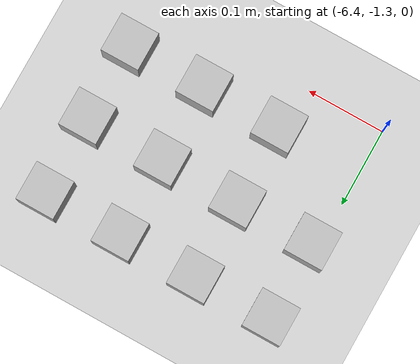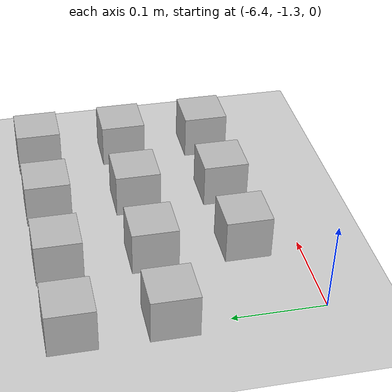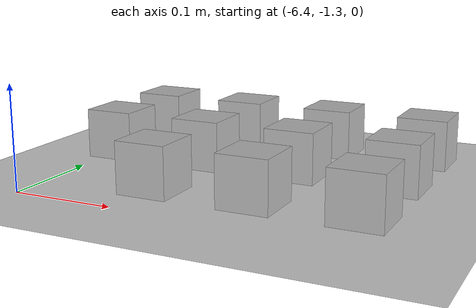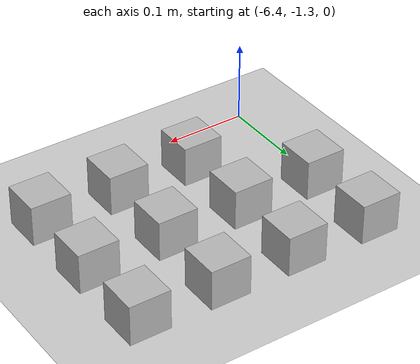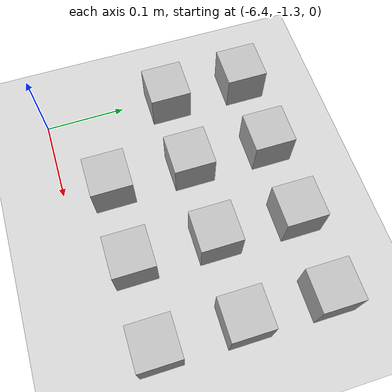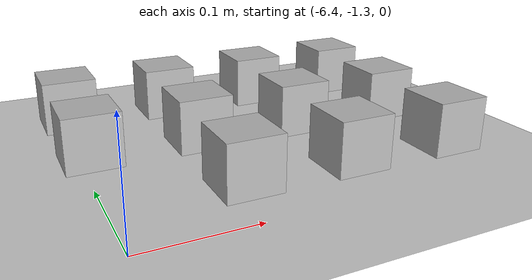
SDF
<sdf version="1.6">
 <world name="default">
  <model name="ground_plane">
   <static>1</static>
   <link name="link">
    <collision name="collision">
     <geometry><plane><normal>0 0 1</normal><size>100 100</size></plane></geometry>
     <surface><friction><ode><mu>100</mu><mu2>50</mu2></ode></friction></surface>
    </collision>
    <visual name="visual">
     <cast_shadows>0</cast_shadows>
     <geometry><plane><normal>0 0 1</normal><size>100 100</size></plane></geometry>
     <material>
      <script><uri>file://media/materials/scripts/gazebo.material</uri><name>Gazebo/Grey</name></script>
     </material>
    </visual>
   </link>
  </model>
  <model name="at33">
   <static>0</static>
   <link name="link">
    <inertial>
     <mass>0.01</mass>
     <inertia><ixx>4e-05</ixx><ixy>0</ixy><ixz>0</ixz><iyy>4e-05</iyy><iyz>0</iyz><izz>4e-05</izz></inertia>
    </inertial>
    <visual name="visual">
     <geometry><box><size>0.05 0.05 0.05</size></box></geometry>
     <material>
      <script>
       <uri>model://at0/materials/scripts</uri>
       <uri>model://at0/materials/textures</uri>
       <name>at0/Diffuse</name>
      </script>
     </material>
    </visual>
    <collision name="collision">
     <geometry><box><size>0.05 0.05 0.05</size></box></geometry>
     <surface><friction><ode><mu>0.8</mu><mu2>0.7</mu2></ode></friction></surface>
    </collision>
   </link>
   <pose>-6.29056 -1.24096 0.024991 0 -2e-06 0</pose>
  </model>
  <model name="at34">
   <static>0</static>
   <link name="link">
    <inertial>
     <mass>0.01</mass>
     <inertia><ixx>4e-05</ixx><ixy>0</ixy><ixz>0</ixz><iyy>4e-05</iyy><iyz>0</iyz><izz>4e-05</izz></inertia>
    </inertial>
    <visual name="visual">
     <geometry><box><size>0.05 0.05 0.05</size></box></geometry>
     <material>
      <script>
       <uri>model://at0/materials/scripts</uri>
       <uri>model://at0/materials/textures</uri>
       <name>at0/Diffuse</name>
      </script>
     </material>
    </visual>
    <collision name="collision">
     <geometry><box><size>0.05 0.05 0.05</size></box></geometry>
     <surface><friction><ode><mu>0.8</mu><mu2>0.7</mu2></ode></friction></surface>
    </collision>
   </link>
   <pose>-6.19056 -1.24096 0.024991 0 -2e-06 0</pose>
  </model>
  <model name="at35">
   <static>0</static>
   <link name="link">
    <inertial>
     <mass>0.01</mass>
     <inertia><ixx>4e-05</ixx><ixy>0</ixy><ixz>0</ixz><iyy>4e-05</iyy><iyz>0</iyz><izz>4e-05</izz></inertia>
    </inertial>
    <visual name="visual">
     <geometry><box><size>0.05 0.05 0.05</size></box></geometry>
     <material>
      <script>
       <uri>model://at0/materials/scripts</uri>
       <uri>model://at0/materials/textures</uri>
       <name>at0/Diffuse</name>
      </script>
     </material>
    </visual>
    <collision name="collision">
     <geometry><box><size>0.05 0.05 0.05</size></box></geometry>
     <surface><friction><ode><mu>0.8</mu><mu2>0.7</mu2></ode></friction></surface>
    </collision>
   </link>
   <pose>-6.09056 -1.24096 0.024995 3.1e-05 1e-05 0</pose>
  </model>
  <model name="at36">
   <static>0</static>
   <link name="link">
    <inertial>
     <mass>0.01</mass>
     <inertia><ixx>4e-05</ixx><ixy>0</ixy><ixz>0</ixz><iyy>4e-05</iyy><iyz>0</iyz><izz>4e-05</izz></inertia>
    </inertial>
    <visual name="visual">
     <geometry><box><size>0.05 0.05 0.05</size></box></geometry>
     <material>
      <script>
       <uri>model://at0/materials/scripts</uri>
       <uri>model://at0/materials/textures</uri>
       <name>at0/Diffuse</name>
      </script>
     </material>
    </visual>
    <collision name="collision">
     <geometry><box><size>0.05 0.05 0.05</size></box></geometry>
     <surface><friction><ode><mu>0.8</mu><mu2>0.7</mu2></ode></friction></surface>
    </collision>
   </link>
   <pose>-6.39056 -1.14096 0.024995 3.1e-05 1e-05 0</pose>
  </model>
  <model name="at37">
   <static>0</static>
   <link name="link">
    <inertial>
     <mass>0.01</mass>
     <inertia><ixx>4e-05</ixx><ixy>0</ixy><ixz>0</ixz><iyy>4e-05</iyy><iyz>0</iyz><izz>4e-05</izz></inertia>
    </inertial>
    <visual name="visual">
     <geometry><box><size>0.05 0.05 0.05</size></box></geometry>
     <material>
      <script>
       <uri>model://at0/materials/scripts</uri>
       <uri>model://at0/materials/textures</uri>
       <name>at0/Diffuse</name>
      </script>
     </material>
    </visual>
    <collision name="collision">
     <geometry><box><size>0.05 0.05 0.05</size></box></geometry>
     <surface><friction><ode><mu>0.8</mu><mu2>0.7</mu2></ode></friction></surface>
    </collision>
   </link>
   <pose>-6.29056 -1.14096 0.024991 0 -2e-06 0</pose>
  </model>
  <model name="at38">
   <static>0</static>
   <link name="link">
    <inertial>
     <mass>0.01</mass>
     <inertia><ixx>4e-05</ixx><ixy>0</ixy><ixz>0</ixz><iyy>4e-05</iyy><iyz>0</iyz><izz>4e-05</izz></inertia>
    </inertial>
    <visual name="visual">
     <geometry><box><size>0.05 0.05 0.05</size></box></geometry>
     <material>
      <script>
       <uri>model://at0/materials/scripts</uri>
       <uri>model://at0/materials/textures</uri>
       <name>at0/Diffuse</name>
      </script>
     </material>
    </visual>
    <collision name="collision">
     <geometry><box><size>0.05 0.05 0.05</size></box></geometry>
     <surface><friction><ode><mu>0.8</mu><mu2>0.7</mu2></ode></friction></surface>
    </collision>
   </link>
   <pose>-6.19056 -1.14096 0.024991 0 -2e-06 0</pose>
  </model>
  <model name="at39">
   <static>0</static>
   <link name="link">
    <inertial>
     <mass>0.01</mass>
     <inertia><ixx>4e-05</ixx><ixy>0</ixy><ixz>0</ixz><iyy>4e-05</iyy><iyz>0</iyz><izz>4e-05</izz></inertia>
    </inertial>
    <visual name="visual">
     <geometry><box><size>0.05 0.05 0.05</size></box></geometry>
     <material>
      <script>
       <uri>model://at0/materials/scripts</uri>
       <uri>model://at0/materials/textures</uri>
       <name>at0/Diffuse</name>
      </script>
     </material>
    </visual>
    <collision name="collision">
     <geometry><box><size>0.05 0.05 0.05</size></box></geometry>
     <surface><friction><ode><mu>0.8</mu><mu2>0.7</mu2></ode></friction></surface>
    </collision>
   </link>
   <pose>-6.09056 -1.14096 0.024991 0 -2e-06 0</pose>
  </model>
  <model name="at40">
   <static>0</static>
   <link name="link">
    <inertial>
     <mass>0.01</mass>
     <inertia><ixx>4e-05</ixx><ixy>0</ixy><ixz>0</ixz><iyy>4e-05</iyy><iyz>0</iyz><izz>4e-05</izz></inertia>
    </inertial>
    <visual name="visual">
     <geometry><box><size>0.05 0.05 0.05</size></box></geometry>
     <material>
      <script>
       <uri>model://at0/materials/scripts</uri>
       <uri>model://at0/materials/textures</uri>
       <name>at0/Diffuse</name>
      </script>
     </material>
    </visual>
    <collision name="collision">
     <geometry><box><size>0.05 0.05 0.05</size></box></geometry>
     <surface><friction><ode><mu>0.8</mu><mu2>0.7</mu2></ode></friction></surface>
    </collision>
   </link>
   <pose>-6.39056 -1.04096 0.024991 0 -2e-06 0</pose>
  </model>
  <model name="at41">
   <static>0</static>
   <link name="link">
    <inertial>
     <mass>0.01</mass>
     <inertia><ixx>4e-05</ixx><ixy>0</ixy><ixz>0</ixz><iyy>4e-05</iyy><iyz>0</iyz><izz>4e-05</izz></inertia>
    </inertial>
    <visual name="visual">
     <geometry><box><size>0.05 0.05 0.05</size></box></geometry>
     <material>
      <script>
       <uri>model://at0/materials/scripts</uri>
       <uri>model://at0/materials/textures</uri>
       <name>at0/Diffuse</name>
      </script>
     </material>
    </visual>
    <collision name="collision">
     <geometry><box><size>0.05 0.05 0.05</size></box></geometry>
     <surface><friction><ode><mu>0.8</mu><mu2>0.7</mu2></ode></friction></surface>
    </collision>
   </link>
   <pose>-6.29056 -1.04096 0.024991 0 -2e-06 0</pose>
  </model>
  <model name="at42">
   <static>0</static>
   <link name="link">
    <inertial>
     <mass>0.01</mass>
     <inertia><ixx>4e-05</ixx><ixy>0</ixy><ixz>0</ixz><iyy>4e-05</iyy><iyz>0</iyz><izz>4e-05</izz></inertia>
    </inertial>
    <visual name="visual">
     <geometry><box><size>0.05 0.05 0.05</size></box></geometry>
     <material>
      <script>
       <uri>model://at0/materials/scripts</uri>
       <uri>model://at0/materials/textures</uri>
       <name>at0/Diffuse</name>
      </script>
     </material>
    </visual>
    <collision name="collision">
     <geometry><box><size>0.05 0.05 0.05</size></box></geometry>
     <surface><friction><ode><mu>0.8</mu><mu2>0.7</mu2></ode></friction></surface>
    </collision>
   </link>
   <pose>-6.19056 -1.04096 0.024991 0 -2e-06 0</pose>
  </model>
  <model name="at43">
   <static>0</static>
   <link name="link">
    <inertial>
     <mass>0.01</mass>
     <inertia><ixx>4e-05</ixx><ixy>0</ixy><ixz>0</ixz><iyy>4e-05</iyy><iyz>0</iyz><izz>4e-05</izz></inertia>
    </inertial>
    <visual name="visual">
     <geometry><box><size>0.05 0.05 0.05</size></box></geometry>
     <material>
      <script>
       <uri>model://at0/materials/scripts</uri>
       <uri>model://at0/materials/textures</uri>
       <name>at0/Diffuse</name>
      </script>
     </material>
    </visual>
    <collision name="collision">
     <geometry><box><size>0.05 0.05 0.05</size></box></geometry>
     <surface><friction><ode><mu>0.8</mu><mu2>0.7</mu2></ode></friction></surface>
    </collision>
   </link>
   <pose>-6.09056 -1.04096 0.024995 3.1e-05 1e-05 0</pose>
  </model>
 </world>
</sdf>
